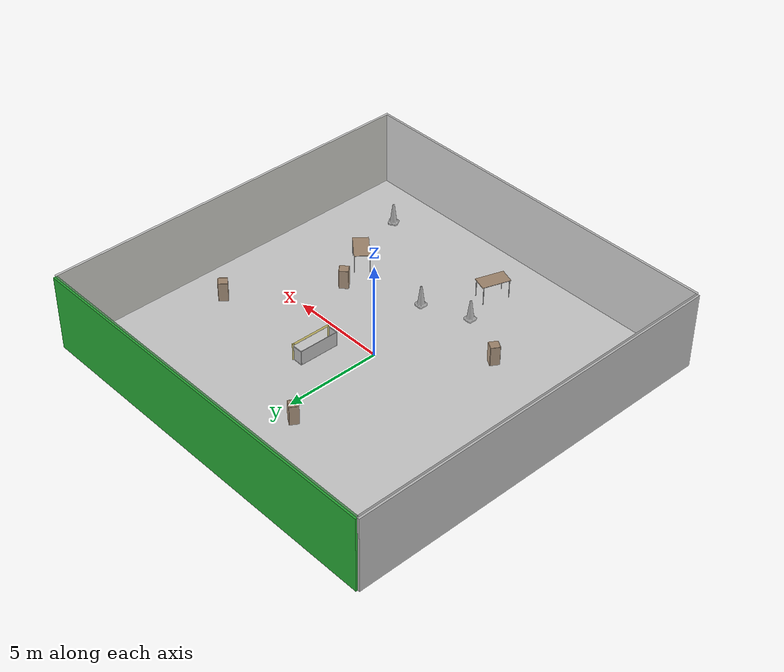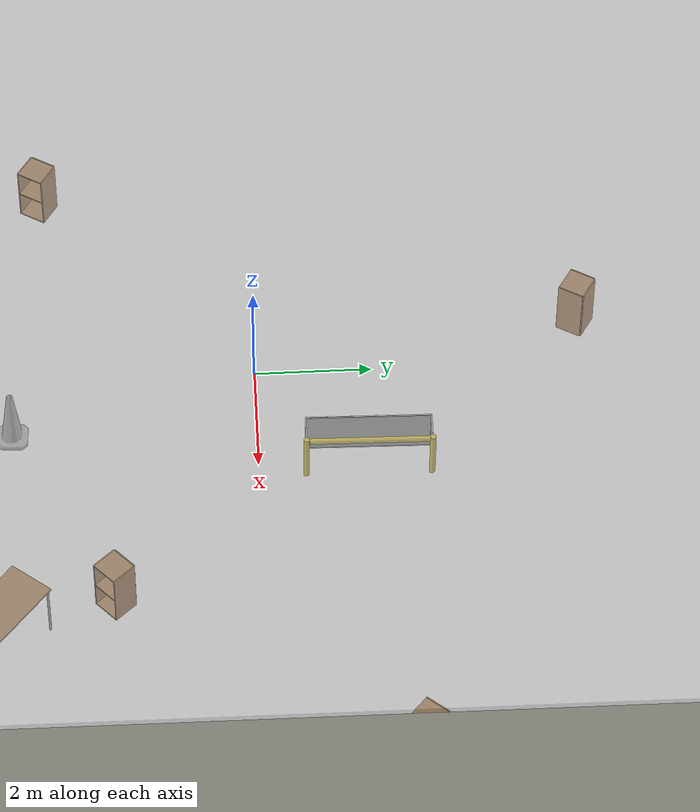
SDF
<sdf version="1.4">
 <world name="default">
  <physics type="ode">
   <max_step_size>0.001</max_step_size>
   <real_time_factor>1</real_time_factor>
   <real_time_update_rate>1000</real_time_update_rate>
   <gravity>0 0 -9.8</gravity>
  </physics>
  <scene><ambient>0.4 0.4 0.4 1</ambient><background>0.7 0.7 0.7 1</background><shadows>1</shadows></scene>
  <model name="Surrounding">
   <static>1</static>
   <link name="Ceiling">
    <collision name="Ceiling_Collision"><geometry><box><size>20 20 0.1</size></box></geometry></collision>
    <visual name="Ceiling_Visual">
     <geometry><box><size>20 20 0.1</size></box></geometry>
     <material>
      <script><uri>file://media/materials/scripts/gazebo.material</uri><name>Gazebo/GreyTransparent</name></script>
     </material>
    </visual>
    <pose>0 0 4.05 0 0 0</pose>
   </link>
   <link name="Wall_South">
    <collision name="Wall_South_Collision">
     <geometry><box><size>20 0 4</size></box></geometry>
     <pose>0 0 2 0 -0 0</pose>
    </collision>
    <visual name="Wall_South_Visual">
     <pose>0 0 2 0 -0 0</pose>
     <geometry><box><size>20 0 4</size></box></geometry>
     <material>
      <script><uri>file://media/materials/scripts/gazebo.material</uri><name>Gazebo/White</name></script>
     </material>
    </visual>
    <velocity_decay><linear>0</linear><angular>0</angular></velocity_decay>
    <pose>0 -10 0 0 -0 0</pose>
   </link>
   <link name="Wall_East">
    <collision name="Wall_21_Collision">
     <geometry><box><size>20 0 4</size></box></geometry>
     <pose>0 0 2 0 -0 0</pose>
    </collision>
    <visual name="Wall_21_Visual">
     <pose>0 0 2 0 -0 0</pose>
     <geometry><box><size>20 0 4</size></box></geometry>
     <material>
      <script><uri>file://media/materials/scripts/gazebo.material</uri><name>Gazebo/PaintedWall</name></script>
     </material>
    </visual>
    <velocity_decay><linear>0</linear><angular>0</angular></velocity_decay>
    <pose>10 0 0 0 -0 1.5708</pose>
   </link>
   <link name="Wall_North">
    <collision name="Wall_22_Collision">
     <geometry><box><size>20 0.2 4</size></box></geometry>
     <pose>0 0 2 0 -0 0</pose>
    </collision>
    <visual name="Wall_22_Visual">
     <pose>0 0 2 0 -0 0</pose>
     <geometry><box><size>20 0.2 4</size></box></geometry>
     <material>
      <script><uri>file://media/materials/scripts/gazebo.material</uri><name>Gazebo/GreenGlow</name></script>
     </material>
    </visual>
    <velocity_decay><linear>0</linear><angular>0</angular></velocity_decay>
    <pose>0 10 0 0 -0 0</pose>
   </link>
   <link name="Wall_West">
    <collision name="Wall_23_Collision">
     <geometry><box><size>20 0.2 4</size></box></geometry>
     <pose>0 0 2 0 -0 0</pose>
    </collision>
    <visual name="Wall_23_Visual">
     <pose>0 0 2 0 -0 0</pose>
     <geometry><box><size>20 0.2 4</size></box></geometry>
     <material>
      <script><uri>file://media/materials/scripts/gazebo.material</uri><name>Gazebo/CloudySky</name></script>
     </material>
    </visual>
    <velocity_decay><linear>0</linear><angular>0</angular></velocity_decay>
    <pose>-10 0 0 0 0 -1.5708</pose>
   </link>
   <link name="Ground_link">
    <collision name="collision">
     <pose>0 0 .05 0 -0 0</pose>
     <geometry><box><size>20 20 0.1</size></box></geometry>
    </collision>
    <visual name="visual">
     <pose>0 0 .05 0 -0 0</pose>
     <geometry><box><size>20 20 0.1</size></box></geometry>
     <material>
      <script><uri>file://media/materials/scripts/gazebo.material</uri><name>Gazebo/GreyTransparent</name></script>
     </material>
    </visual>
   </link>
   <static>1</static>
  </model>
  <spherical_coordinates>
   <surface_model>EARTH_WGS84</surface_model>
   <latitude_deg>0</latitude_deg>
   <longitude_deg>0</longitude_deg>
   <elevation>0</elevation>
   <heading_deg>0</heading_deg>
  </spherical_coordinates>
  <light name="lightball_0" type="diffuse">
   <diffuse>0.8 0.8 0.8 1</diffuse>
   <specular>0.2 0.2 0.2 1</specular>
   <attenuation>
    <range>100</range>
    <constant>0.7</constant>
    <linear>0.01</linear>
    <quadratic>0.001</quadratic>
   </attenuation>
   <direction>-0.5 0.1 -0.9</direction>
   <pose>6.00176462049 -1.31875500786 3.78641228946 0 0 0</pose>
  </light>
  <light name="lightball_1" type="diffuse">
   <diffuse>0.8 0.8 0.8 1</diffuse>
   <specular>0.2 0.2 0.2 1</specular>
   <attenuation>
    <range>100</range>
    <constant>0.7</constant>
    <linear>0.01</linear>
    <quadratic>0.001</quadratic>
   </attenuation>
   <direction>-0.5 0.1 -0.9</direction>
   <pose>-5.50428368731 3.72566414528 1.55566420115 0 0 0</pose>
  </light>
  <light name="lightball_2" type="diffuse">
   <diffuse>0.8 0.8 0.8 1</diffuse>
   <specular>0.2 0.2 0.2 1</specular>
   <attenuation>
    <range>100</range>
    <constant>0.7</constant>
    <linear>0.01</linear>
    <quadratic>0.001</quadratic>
   </attenuation>
   <direction>-0.5 0.1 -0.9</direction>
   <pose>-2.12409910885 -6.25555939825 0.852628389475 0 0 0</pose>
  </light>
  <light name="lightball_3" type="diffuse">
   <diffuse>0.8 0.8 0.8 1</diffuse>
   <specular>0.2 0.2 0.2 1</specular>
   <attenuation>
    <range>100</range>
    <constant>0.7</constant>
    <linear>0.01</linear>
    <quadratic>0.001</quadratic>
   </attenuation>
   <direction>-0.5 0.1 -0.9</direction>
   <pose>-1.10436154094 8.03202307419 3.60663146955 0 0 0</pose>
  </light>
  <light name="lightball_4" type="diffuse">
   <diffuse>0.8 0.8 0.8 1</diffuse>
   <specular>0.2 0.2 0.2 1</specular>
   <attenuation>
    <range>100</range>
    <constant>0.7</constant>
    <linear>0.01</linear>
    <quadratic>0.001</quadratic>
   </attenuation>
   <direction>-0.5 0.1 -0.9</direction>
   <pose>7.6577464 -0.74766038293 0.55555619863 0 0 0</pose>
  </light>
  <light name="lightball_5" type="diffuse">
   <diffuse>0.8 0.8 0.8 1</diffuse>
   <specular>0.2 0.2 0.2 1</specular>
   <attenuation>
    <range>100</range>
    <constant>0.7</constant>
    <linear>0.01</linear>
    <quadratic>0.001</quadratic>
   </attenuation>
   <direction>-0.5 0.1 -0.9</direction>
   <pose>-8.35333073503 -8.46460228094 0.914016676474 0 0 0</pose>
  </light>
  <light name="lightball_6" type="diffuse">
   <diffuse>0.8 0.8 0.8 1</diffuse>
   <specular>0.2 0.2 0.2 1</specular>
   <attenuation>
    <range>100</range>
    <constant>0.7</constant>
    <linear>0.01</linear>
    <quadratic>0.001</quadratic>
   </attenuation>
   <direction>-0.5 0.1 -0.9</direction>
   <pose>-6.45045961282 -5.55733997331 0.549808914014 0 0 0</pose>
  </light>
  <light name="lightball_7" type="diffuse">
   <diffuse>0.8 0.8 0.8 1</diffuse>
   <specular>0.2 0.2 0.2 1</specular>
   <attenuation>
    <range>100</range>
    <constant>0.7</constant>
    <linear>0.01</linear>
    <quadratic>0.001</quadratic>
   </attenuation>
   <direction>-0.5 0.1 -0.9</direction>
   <pose>4.67747555631 4.43815148359 1.13034636826 0 0 0</pose>
  </light>
  <light name="lightball_8" type="diffuse">
   <diffuse>0.8 0.8 0.8 1</diffuse>
   <specular>0.2 0.2 0.2 1</specular>
   <attenuation>
    <range>100</range>
    <constant>0.7</constant>
    <linear>0.01</linear>
    <quadratic>0.001</quadratic>
   </attenuation>
   <direction>-0.5 0.1 -0.9</direction>
   <pose>-9.42975478254 4.96378933024 1.36614137999 0 0 0</pose>
  </light>
  <light name="lightball_9" type="diffuse">
   <diffuse>0.8 0.8 0.8 1</diffuse>
   <specular>0.2 0.2 0.2 1</specular>
   <attenuation>
    <range>100</range>
    <constant>0.7</constant>
    <linear>0.01</linear>
    <quadratic>0.001</quadratic>
   </attenuation>
   <direction>-0.5 0.1 -0.9</direction>
   <pose>-6.13471747826 8.63715776306 1.16819000497 0 0 0</pose>
  </light>
  <light name="lightball_10" type="diffuse">
   <diffuse>0.8 0.8 0.8 1</diffuse>
   <specular>0.2 0.2 0.2 1</specular>
   <attenuation>
    <range>100</range>
    <constant>0.7</constant>
    <linear>0.01</linear>
    <quadratic>0.001</quadratic>
   </attenuation>
   <direction>-0.5 0.1 -0.9</direction>
   <pose>-5.11876975414 3.05355541818 1.42687019068 0 0 0</pose>
  </light>
  <light name="lightball_11" type="diffuse">
   <diffuse>0.8 0.8 0.8 1</diffuse>
   <specular>0.2 0.2 0.2 1</specular>
   <attenuation>
    <range>100</range>
    <constant>0.7</constant>
    <linear>0.01</linear>
    <quadratic>0.001</quadratic>
   </attenuation>
   <direction>-0.5 0.1 -0.9</direction>
   <pose>-9.2404059148 -1.0116567658 3.78495852737 0 0 0</pose>
  </light>
  <light name="lightball_12" type="diffuse">
   <diffuse>0.8 0.8 0.8 1</diffuse>
   <specular>0.2 0.2 0.2 1</specular>
   <attenuation>
    <range>100</range>
    <constant>0.7</constant>
    <linear>0.01</linear>
    <quadratic>0.001</quadratic>
   </attenuation>
   <direction>-0.5 0.1 -0.9</direction>
   <pose>3.40111072722 -7.41898930139 1.7910635904 0 0 0</pose>
  </light>
  <light name="lightball_13" type="diffuse">
   <diffuse>0.8 0.8 0.8 1</diffuse>
   <specular>0.2 0.2 0.2 1</specular>
   <attenuation>
    <range>100</range>
    <constant>0.7</constant>
    <linear>0.01</linear>
    <quadratic>0.001</quadratic>
   </attenuation>
   <direction>-0.5 0.1 -0.9</direction>
   <pose>-4.809369764 -0.318829862744 2.95180924055 0 0 0</pose>
  </light>
  <include><uri>model://cabinet</uri><pose>-3.97756075538 -3.66312059113 0 0 0 2.59104377226</pose></include>
  <include><uri>model://table</uri><pose>-0.583392387542 -7.05046952892 0 0 0 1.24804720645</pose></include>
  <include>
   <uri>model://construction_cone</uri>
   <pose>-1.09158937954 -5.06542260921 0 0 0 3.07437086516</pose>
  </include>
  <include><uri>model://cabinet</uri><pose>-0.899504108678 5.55376010006 0 0 0 1.02652741804</pose></include>
  <include>
   <uri>model://construction_cone</uri>
   <pose>1.23802384981 -4.11168481167 0 0 0 1.53759221806</pose>
  </include>
  <include>
   <uri>model://robocup_3Dsim_goal</uri>
   <pose>2.25231798001 1.83783903129 0 0 0 3.12725413269</pose>
  </include>
  <include><uri>model://table</uri><pose>5.54635242631 -4.21728243262 0 0 0 2.46280059696</pose></include>
  <include><uri>model://cabinet</uri><pose>4.79935121761 -2.43020860231 0 0 0 2.31183095439</pose></include>
  <include>
   <uri>model://construction_cone</uri>
   <pose>6.99377642711 -7.69351707258 0 0 0 2.13041225686</pose>
  </include>
  <include><uri>model://cabinet</uri><pose>7.93099503864 2.4253961979 0 0 0 0.866716183956</pose></include>
 </world>
</sdf>

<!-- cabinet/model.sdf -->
<sdf version="1.5">
  <model name="cabinet">
    <static>true</static>
    <link name="cabinet_bottom_plate">
      <inertial>
        <pose>0 0 -1 0 0 0</pose>
        <inertia>
          <ixx>2.050000</ixx>
          <ixy>0</ixy>
          <ixz>0</ixz>
          <iyy>2.050000</iyy>
          <iyz>0</iyz>
          <izz>2.050000</izz>
        </inertia>
        <mass>25.000000</mass>
      </inertial>
      <collision name="cabinet_bottom_plate_geom">
        <pose>0 0 0.010000 0 0 0</pose>
        <geometry>
          <box>
            <size>0.450000 0.450000 0.020000</size>
          </box>
        </geometry>
      </collision>
      <visual name="cabinet_bottom_plate_geom_visual">
        <pose>0 0 0.010000 0 0 0</pose>
        <geometry>
          <box>
            <size>0.450000 0.450000 0.020000</size>
          </box>
        </geometry>
        <material>
          <script>
            <uri>model://media/materials/scripts/gazebo.material</uri>
            <name>Gazebo/Wood</name>
          </script>
        </material>
      </visual>
      <collision name="cabinet_bottom_plate_geom_cabinet_back_plate">
        <pose>0.235000 0 0.510000 0 0 0</pose>
        <geometry>
          <box>
            <size>0.020000 0.450000 1.020000</size>
          </box>
        </geometry>
      </collision>
      <visual name="cabinet_bottom_plate_geom_cabinet_back_plate_visual">
        <pose>0.235000 0 0.510000 0 0 0</pose>
        <geometry>
          <box>
            <size>0.020000 0.450000 1.020000</size>
          </box>
        </geometry>
        <material>
          <script>
            <uri>model://media/materials/scripts/gazebo.material</uri>
            <name>Gazebo/Wood</name>
          </script>
        </material>
      </visual>
      <collision name="cabinet_bottom_plate_geom_cabinet_left_plate">
        <pose>0 0.235000 0.510000 0 0 0</pose>
        <geometry>
          <box>
            <size>0.450000 0.020000 1.020000</size>
          </box>
        </geometry>
      </collision>
      <visual name="cabinet_bottom_plate_geom_cabinet_left_plate_visual">
        <pose>0 0.235000 0.510000 0 0 0</pose>
        <geometry>
          <box>
            <size>0.450000 0.020000 1.020000</size>
          </box>
        </geometry>
        <material>
          <script>
            <uri>model://media/materials/scripts/gazebo.material</uri>
            <name>Gazebo/Wood</name>
          </script>
        </material>
      </visual>
      <collision name="cabinet_bottom_plate_geom_cabinet_middle_plate">
        <pose>0 0 0.510000 0 0 0</pose>
        <geometry>
          <box>
            <size>0.450000 0.450000 0.020000</size>
          </box>
        </geometry>
      </collision>
      <visual name="cabinet_bottom_plate_geom_cabinet_middle_plate_visual">
        <pose>0 0 0.510000 0 0 0</pose>
        <geometry>
          <box>
            <size>0.450000 0.450000 0.020000</size>
          </box>
        </geometry>
        <material>
          <script>
            <uri>model://media/materials/scripts/gazebo.material</uri>
            <name>Gazebo/Wood</name>
          </script>
        </material>
      </visual>
      <collision name="cabinet_bottom_plate_geom_cabinet_right_plate">
        <pose>0 -0.235000 0.510000 0 0 0</pose>
        <geometry>
          <box>
            <size>0.450000 0.020000 1.020000</size>
          </box>
        </geometry>
      </collision>
      <visual name="cabinet_bottom_plate_geom_cabinet_right_plate_visual">
        <pose>0 -0.235000 0.510000 0 0 0</pose>
        <geometry>
          <box>
            <size>0.450000 0.020000 1.020000</size>
          </box>
        </geometry>
        <material>
          <script>
            <uri>model://media/materials/scripts/gazebo.material</uri>
            <name>Gazebo/Wood</name>
          </script>
        </material>
      </visual>
      <collision name="cabinet_bottom_plate_geom_cabinet_top_plate">
        <pose>0 0 1.010000 0 0 0</pose>
        <geometry>
          <box>
            <size>0.450000 0.450000 0.020000</size>
          </box>
        </geometry>
      </collision>
      <visual name="cabinet_bottom_plate_geom_cabinet_top_plate_visual">
        <pose>0 0 1.010000 0 0 0</pose>
        <geometry>
          <box>
            <size>0.450000 0.450000 0.020000</size>
          </box>
        </geometry>
        <material>
          <script>
            <uri>model://media/materials/scripts/gazebo.material</uri>
            <name>Gazebo/Wood</name>
          </script>
        </material>
      </visual>
    </link>
  </model>
</sdf>

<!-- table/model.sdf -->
<sdf version="1.5">
  <model name="table">
    <static>true</static>
    <link name="link">
      <collision name="surface">
        <pose>0 0 1.0 0 0 0</pose>
        <geometry>
          <box>
            <size>1.5 0.8 0.03</size>
          </box>
        </geometry>
        <surface>
          <friction>
            <ode>
              <mu>0.6</mu>
              <mu2>0.6</mu2>
            </ode>
          </friction>
        </surface>
      </collision>
      <visual name="visual1">
        <pose>0 0 1.0 0 0 0</pose>
        <geometry>
          <box>
            <size>1.5 0.8 0.03</size>
          </box>
        </geometry>
        <material>
          <script>
            <uri>model://media/materials/scripts/gazebo.material</uri>
            <name>Gazebo/Wood</name>
          </script>
        </material>
      </visual>
      <collision name="front_left_leg">
        <pose>0.68 0.38 0.5 0 0 0</pose>
        <geometry>
          <cylinder>
            <radius>0.02</radius>
            <length>1.0</length>
          </cylinder>
        </geometry>
      </collision>
      <visual name="front_left_leg">
        <pose>0.68 0.38 0.5 0 0 0</pose>
        <geometry>
          <cylinder>
            <radius>0.02</radius>
            <length>1.0</length>
          </cylinder>
        </geometry>
        <material>
          <script>
            <uri>model://media/materials/scripts/gazebo.material</uri>
            <name>Gazebo/Grey</name>
          </script>
        </material>
      </visual>
      <collision name="front_right_leg">
        <pose>0.68 -0.38 0.5 0 0 0</pose>
        <geometry>
          <cylinder>
            <radius>0.02</radius>
            <length>1.0</length>
          </cylinder>
        </geometry>
      </collision>
      <visual name="front_right_leg">
        <pose>0.68 -0.38 0.5 0 0 0</pose>
        <geometry>
          <cylinder>
            <radius>0.02</radius>
            <length>1.0</length>
          </cylinder>
        </geometry>
        <material>
          <script>
            <uri>model://media/materials/scripts/gazebo.material</uri>
            <name>Gazebo/Grey</name>
          </script>
        </material>
      </visual>
      <collision name="back_right_leg">
        <pose>-0.68 -0.38 0.5 0 0 0</pose>
        <geometry>
          <cylinder>
            <radius>0.02</radius>
            <length>1.0</length>
          </cylinder>
        </geometry>
      </collision>
      <visual name="back_right_leg">
        <pose>-0.68 -0.38 0.5 0 0 0</pose>
        <geometry>
          <cylinder>
            <radius>0.02</radius>
            <length>1.0</length>
          </cylinder>
        </geometry>
        <material>
          <script>
            <uri>model://media/materials/scripts/gazebo.material</uri>
            <name>Gazebo/Grey</name>
          </script>
        </material>
      </visual>
      <collision name="back_left_leg">
        <pose>-0.68 0.38 0.5 0 0 0</pose>
        <geometry>
          <cylinder>
            <radius>0.02</radius>
            <length>1.0</length>
          </cylinder>
        </geometry>
      </collision>
      <visual name="back_left_leg">
        <pose>-0.68 0.38 0.5 0 0 0</pose>
        <geometry>
          <cylinder>
            <radius>0.02</radius>
            <length>1.0</length>
          </cylinder>
        </geometry>
        <material>
          <script>
            <uri>model://media/materials/scripts/gazebo.material</uri>
            <name>Gazebo/Grey</name>
          </script>
        </material>
      </visual>
    </link>
  </model>
</sdf>

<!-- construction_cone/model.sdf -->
<sdf version="1.5">
  <model name="Construction Cone">
    <link name="link">
      <collision name="collision">
        <geometry>
          <mesh>
            <scale>10 10 10</scale>
            <uri>file://isr-testbed/construction_cone/meshes/construction_cone.dae</uri>
          </mesh>
        </geometry>
      </collision>
      <visual name="visual">
        <geometry>
          <mesh>
            <scale>10 10 10</scale>
            <uri>file://isr-testbed/construction_cone/meshes/construction_cone.dae</uri>
          </mesh>
        </geometry>
      </visual>
    </link>
  </model>
</sdf>

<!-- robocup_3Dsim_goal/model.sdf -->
<sdf version="1.5">
  <model name="robocup_3d_goal">
    <static>true</static>
    <link name="left_post">
      <pose>0 1.05 0.45 0 0 0</pose>
      <collision name="collision">
        <geometry>
          <cylinder>
            <radius>0.05</radius>
            <length>0.9</length>
          </cylinder>
        </geometry>
      </collision>
      <visual name="visual">
        <geometry>
          <cylinder>
            <radius>0.05</radius>
            <length>0.9</length>
          </cylinder>
        </geometry>
        <material>
          <script>
            <uri>file://media/materials/scripts/gazebo.material</uri>
            <name>Gazebo/ZincYellow</name>
          </script>
        </material>
      </visual>
    </link>
    <link name="left_support_horiz_lower">
      <pose>0.30 1.05 0.01 0 0 0</pose>
      <collision name="collision">
        <geometry>
          <box>
            <size>0.50 0.02 0.02</size>
          </box>
        </geometry>
      </collision>
      <visual name="visual">
        <geometry>
          <box>
            <size>0.50 0.02 0.02</size>
          </box>
        </geometry>
        <material>
          <script>
            <uri>file://media/materials/scripts/gazebo.material</uri>
            <name>Gazebo/White</name>
          </script>
        </material>
      </visual>
    </link>
    <link name="left_support_horiz_upper">
      <pose>0.30 1.05 0.79 0 0 0</pose>
      <collision name="collision">
        <geometry>
          <box>
            <size>0.50 0.02 0.02</size>
          </box>
        </geometry>
      </collision>
      <visual name="visual">
        <geometry>
          <box>
            <size>0.50 0.02 0.02</size>
          </box>
        </geometry>
        <material>
          <script>
            <uri>file://media/materials/scripts/gazebo.material</uri>
            <name>Gazebo/White</name>
          </script>
        </material>
      </visual>
    </link>
    <link name="left_support_vertical">
      <pose>0.56 1.05 0.4 0 1.5708 0</pose>
      <collision name="collision">
        <geometry>
          <box>
            <size>0.80 0.02 0.02</size>
          </box>
        </geometry>
      </collision>
      <visual name="visual">
        <geometry>
          <box>
            <size>0.80 0.02 0.02</size>
          </box>
        </geometry>
        <material>
          <script>
            <uri>file://media/materials/scripts/gazebo.material</uri>
            <name>Gazebo/White</name>
          </script>
        </material>
      </visual>
    </link>
    <link name="right_support_horiz_lower">
      <pose>0.30 -1.05 0.01 0 0 0</pose>
      <collision name="collision">
        <geometry>
          <box>
            <size>0.50 0.02 0.02</size>
          </box>
        </geometry>
      </collision>
      <visual name="visual">
        <geometry>
          <box>
            <size>0.50 0.02 0.02</size>
          </box>
        </geometry>
        <material>
          <script>
            <uri>file://media/materials/scripts/gazebo.material</uri>
            <name>Gazebo/White</name>
          </script>
        </material>
      </visual>
    </link>
    <link name="right_support_horiz_upper">
      <pose>0.30 -1.05 0.79 0 0 0</pose>
      <collision name="collision">
        <geometry>
          <box>
            <size>0.50 0.02 0.02</size>
          </box>
        </geometry>
      </collision>
      <visual name="visual">
        <geometry>
          <box>
            <size>0.50 0.02 0.02</size>
          </box>
        </geometry>
        <material>
          <script>
            <uri>file://media/materials/scripts/gazebo.material</uri>
            <name>Gazebo/White</name>
          </script>
        </material>
      </visual>
    </link>
    <link name="right_support_vertical">
      <pose>0.56 -1.05 0.4 0 1.5708 0</pose>
      <collision name="collision">
        <geometry>
          <box>
            <size>0.80 0.02 0.02</size>
          </box>
        </geometry>
      </collision>
      <visual name="visual">
        <geometry>
          <box>
            <size>0.80 0.02 0.02</size>
          </box>
        </geometry>
        <material>
          <script>
            <uri>file://media/materials/scripts/gazebo.material</uri>
            <name>Gazebo/White</name>
          </script>
        </material>
      </visual>
    </link>
    <link name="center_support_horiz_lower">
      <pose>0.56 0 0.01 0 1.5708 0</pose>
      <collision name="collision">
        <geometry>
          <box>
            <size>0.02 2.08 0.02</size>
          </box>
        </geometry>
      </collision>
      <visual name="visual">
        <geometry>
          <box>
            <size>0.02 2.08 0.02</size>
          </box>
        </geometry>
        <material>
          <script>
            <uri>file://media/materials/scripts/gazebo.material</uri>
            <name>Gazebo/White</name>
          </script>
        </material>
      </visual>
    </link>
    <link name="center_support_horiz_upper">
      <pose>0.56 0 0.79 0 1.5708 0</pose>
      <collision name="collision">
        <geometry>
          <box>
            <size>0.02 2.08 0.02</size>
          </box>
        </geometry>
      </collision>
      <visual name="visual">
        <geometry>
          <box>
            <size>0.02 2.08 0.02</size>
          </box>
        </geometry>
        <material>
          <script>
            <uri>file://media/materials/scripts/gazebo.material</uri>
            <name>Gazebo/White</name>
          </script>
        </material>
      </visual>
    </link>
    <link name="right_post">
      <pose>0 -1.05 0.45 0 0 0</pose>
      <collision name="collision">
        <geometry>
          <cylinder>
            <radius>0.05</radius>
            <length>0.9</length>
          </cylinder>
        </geometry>
      </collision>
      <visual name="visual">
        <geometry>
          <cylinder>
            <radius>0.05</radius>
            <length>0.9</length>
          </cylinder>
        </geometry>
        <material>
          <script>
            <uri>file://media/materials/scripts/gazebo.material</uri>
            <name>Gazebo/ZincYellow</name>
          </script>
        </material>
      </visual>
    </link>
    <link name="crossbar">
      <pose>0 0 0.85 1.57 1.57 0</pose>
      <collision name="collision">
        <geometry>
          <cylinder>
            <radius>0.05</radius>
            <length>2.0</length>
          </cylinder>
        </geometry>
      </collision>
      <visual name="visual">
        <geometry>
          <cylinder>
            <radius>0.05</radius>
            <length>2.0</length>
          </cylinder>
        </geometry>
        <material>
          <script>
            <uri>file://media/materials/scripts/gazebo.material</uri>
            <name>Gazebo/ZincYellow</name>
          </script>
        </material>
      </visual>
    </link>
    <link name="center_net">
      <pose>0.56 0 0.40 0 0 0</pose>
      <collision name="collision">
        <geometry>
          <box>
            <size>0.01 2.1 0.80</size>
          </box>
        </geometry>
      </collision>
      <visual name="visual">
        <geometry>
          <box>
            <size>0.01 2.1 0.80</size>
          </box>
        </geometry>
        <material>
          <script>
            <uri>model://../model_source/models/robocup09_spl_field/materials/scripts/</uri>
            <uri>model://../model_source/models/robocup09_spl_field/materials/textures/</uri>
            <name>RoboCup/Net</name>
          </script>
        </material>
      </visual>
    </link>
    <link name="left_net">
      <pose>0.30 1.05 0.40 0 0 0</pose>
      <collision name="collision">
        <geometry>
          <box>
            <size>0.50 0.01 0.76</size>
          </box>
        </geometry>
      </collision>
      <visual name="visual">
        <geometry>
          <box>
            <size>0.50 0.01 0.76</size>
          </box>
        </geometry>
        <material>
          <script>
            <uri>model://../model_source/models/robocup09_spl_field/materials/scripts/</uri>
            <uri>model://../model_source/models/robocup09_spl_field/materials/textures/</uri>
            <name>RoboCup/Net</name>
          </script>
        </material>
      </visual>
    </link>
    <link name="right_net">
      <pose>0.30 -1.05 0.40 0 0 0</pose>
      <collision name="collision">
        <geometry>
          <box>
            <size>0.50 0.01 0.76</size>
          </box>
        </geometry>
      </collision>
      <visual name="visual">
        <geometry>
          <box>
            <size>0.50 0.01 0.76</size>
          </box>
        </geometry>
        <material>
          <script>
            <uri>model://../model_source/models/robocup09_spl_field/materials/scripts/</uri>
            <uri>model://../model_source/models/robocup09_spl_field/materials/textures/</uri>
            <name>RoboCup/Net</name>
          </script>
        </material>
      </visual>
    </link>
  </model>
</sdf>
